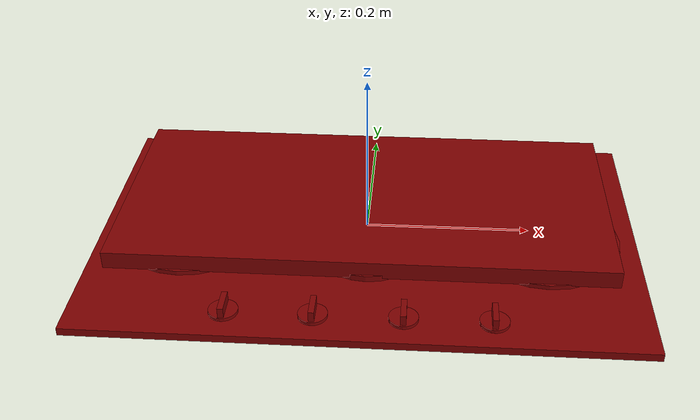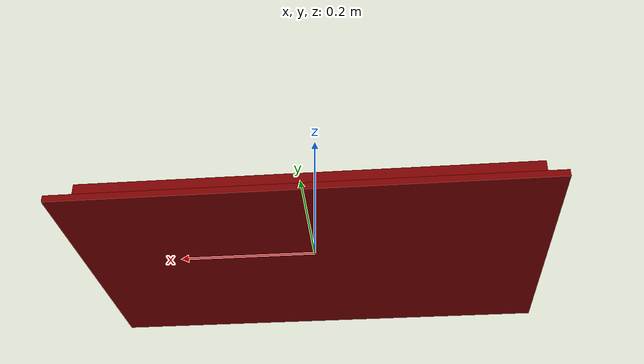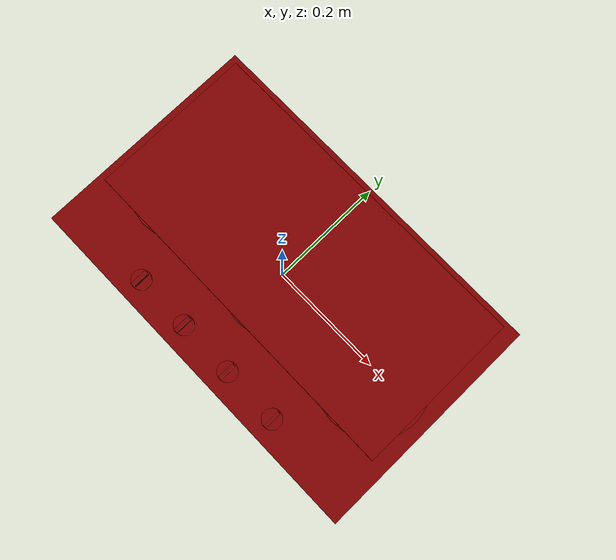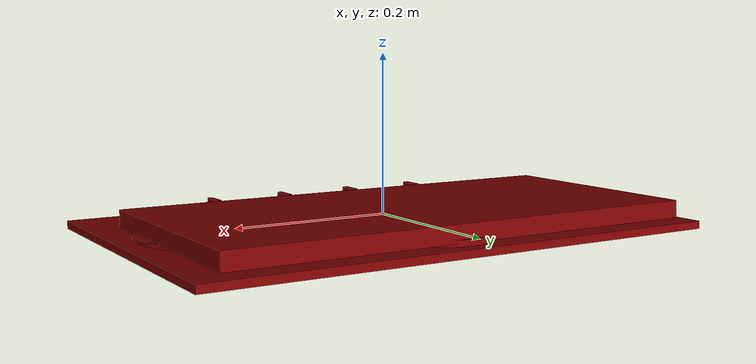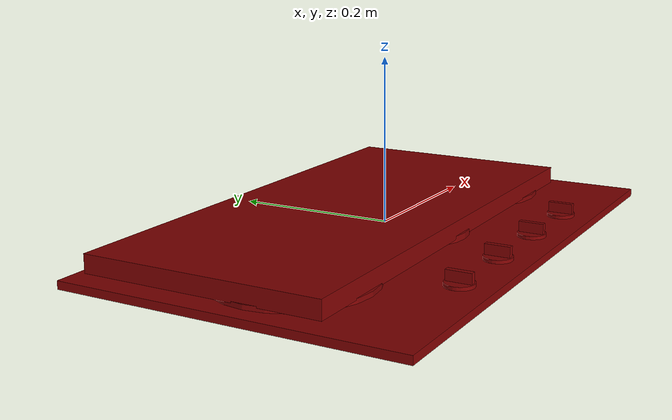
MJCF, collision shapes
<?xml version='1.0' encoding='UTF-8'?>
<mujoco model="model">
  <option timestep="0.002" gravity="0.0 0.0 -9.81"/>
  <compiler angle="radian"/>
  <asset>
    <mesh file="visuals/knob_front_center.obj" name="knob_front_center_vis"/>
    <mesh file="visuals/knob_front_left.obj" name="knob_front_left_vis"/>
    <mesh file="visuals/knob_front_right.obj" name="knob_front_right_vis"/>
    <mesh file="visuals/knob_rear_center.obj" name="knob_rear_center_vis"/>
    <mesh file="visuals/Body001.obj" name="Body001_vis"/>
    <mesh file="visuals/Body002.obj" name="Body002_vis"/>
    <texture file="visuals/T_BC001.png" name="Body001_material" type="2d"/>
    <material name="Body001_material" rgba="1 1 1 1.0" texture="Body001_material" shininess="1" specular="1"/>
    <texture file="visuals/T_BC001.png" name="knob_front_center_material" type="2d"/>
    <material name="knob_front_center_material" rgba="1 1 1 1.0" texture="knob_front_center_material" shininess="1" specular="1"/>
    <texture file="visuals/T_BC001.png" name="knob_front_left_material" type="2d"/>
    <material name="knob_front_left_material" rgba="1 1 1 1.0" texture="knob_front_left_material" shininess="1" specular="1"/>
    <texture file="visuals/T_BC001.png" name="knob_front_right_material" type="2d"/>
    <material name="knob_front_right_material" rgba="1 1 1 1.0" texture="knob_front_right_material" shininess="1" specular="1"/>
    <texture file="visuals/T_BC001.png" name="knob_rear_center_material" type="2d"/>
    <material name="knob_rear_center_material" rgba="1 1 1 1.0" texture="knob_rear_center_material" shininess="1" specular="1"/>
    <texture file="visuals/T_BC001.png" name="Body002_material" type="2d"/>
    <material name="Body002_material" rgba="1 1 1 1.0" texture="Body002_material" shininess="10" specular="10"/>
  </asset>
  <default>
    <default class="visual">
      <geom conaffinity="0" contype="0" group="1" type="mesh"/>
    </default>
    <default class="collision">
      <geom group="0" rgba="0.5 0 0 0.5"/>
    </default>
    <default class="spawn">
      <geom group="0" rgba="1 1 1 0.5" contype="0" conaffinity="0"/>
      <site group="0" rgba="1 1 1 0.5"/>
    </default>
    <default class="region">
      <geom group="1" conaffinity="0" contype="0" rgba="0 1 0 0"/>
    </default>
  </default>
  <worldbody>
    <body>
      <body name="object">
        <geom mesh="Body001_vis" type="mesh" solimp="0.998 0.998 0.001" solref="0.001 1" friction="0.95 0.3 0.1" class="visual" material="Body001_material"/>
        <geom class="collision" type="box" pos="4.380980911378174e-09 0.0 -0.01332028117030859" size="0.3342317044734955 0.20851737260818481 0.0048271240666508675" quat="1.0 0.0 0.0 0.0"/>
        <geom class="collision" type="cylinder" pos="-0.22033053636550903 -0.012668903917074203 -0.006297476124018431" size="0.09286115318536758 0.0034886973444372416" quat="1.0 0.0 0.0 0.0"/>
        <geom class="collision" type="cylinder" pos="-0.22033053636550903 -0.012668903917074203 0.0036210580728948116" size="0.05264684557914734 0.007020096760243177" quat="1.0 0.0 0.0 0.0"/>
        <geom class="collision" type="cylinder" pos="0.22016026079654694 -0.012143885716795921 -0.006297476124018431" size="0.09286115318536758 0.0034886973444372416" quat="1.0 0.0 0.0 0.0"/>
        <geom class="collision" type="cylinder" pos="0.22016026079654694 -0.012143885716795921 0.0036210580728948116" size="0.05264684557914734 0.007020096760243177" quat="1.0 0.0 0.0 0.0"/>
        <geom class="collision" type="cylinder" pos="0.004366257227957249 -0.037866052240133286 -0.0040492527186870575" size="0.06666730344295502 0.0038189413025975227" quat="1.0 0.0 0.0 0.0"/>
        <geom class="collision" type="cylinder" pos="0.004366257227957249 -0.037866052240133286 0.005188675597310066" size="0.037796467542648315 0.005633363965898752" quat="1.0 0.0 0.0 0.0"/>
        <geom class="collision" type="cylinder" pos="0.004366257227957249 0.1288725584745407 -0.0040492527186870575" size="0.06666730344295502 0.0038189413025975227" quat="1.0 0.0 0.0 0.0"/>
        <geom class="collision" type="cylinder" pos="0.004366257227957249 0.1288725584745407 0.005188675597310066" size="0.037796467542648315 0.005633363965898752" quat="1.0 0.0 0.0 0.0"/>
        <body name="knob_front_center">
          <joint axis="0.0 0.0 1.0" pos="-0.051159366965293884 -0.16971886157989502 0.0006744418642483652" limited="true" name="knob_front_center_joint" range="0.0 3.6651914291880923" type="hinge" damping="0.2" armature="0.01" frictionloss="1"/>
          <geom mesh="knob_front_center_vis" type="mesh" solimp="0.998 0.998 0.001" solref="0.001 1" friction="0.95 0.3 0.1" class="visual" material="knob_front_center_material"/>
          <geom class="collision" type="cylinder" pos="-0.05127892270684242 -0.16964967548847198 -0.0053074052557349205" size="0.017160845920443535 0.002062341431155801" quat="1.0 0.0 0.0 0.0" friction="100 0.5 0.01"/>
          <geom class="collision" type="box" pos="-0.05127892270684242 -0.1696496605873108 0.0033415518701076508" size="0.003390667960047722 0.015241791494190693 0.006311689503490925" quat="1.0 0.0 0.0 0.0" name="knob_front_center_main" friction="100 0.5 0.01"/>
        </body>
        <body name="knob_front_left">
          <joint axis="0.0 0.0 1.0" pos="-0.15330645442008972 -0.16971886157989502 0.0011382149532437325" limited="true" name="knob_front_left_joint" range="0.0 3.6651914291880923" type="hinge" damping="0.2" armature="0.01" frictionloss="1"/>
          <geom mesh="knob_front_left_vis" type="mesh" solimp="0.998 0.998 0.001" solref="0.001 1" friction="0.95 0.3 0.1" class="visual" material="knob_front_left_material"/>
          <geom class="collision" type="cylinder" pos="-0.1531001776456833 -0.16964967548847198 -0.004816659726202488" size="0.017160845920443535 0.002062341431155801" quat="1.0 0.0 0.0 0.0" friction="100 0.5 0.01"/>
          <geom class="collision" type="box" pos="-0.1531001776456833 -0.1696496605873108 0.0033415518701076508" size="0.003406719071790576 0.015241791494190693 0.006311689503490925" quat="1.0 0.0 0.0 0.0" name="knob_front_left_main" friction="100 0.5 0.01"/>
        </body>
        <body name="knob_front_right">
          <joint axis="0.0 0.0 1.0" pos="0.15321055054664612 -0.16971886157989502 0.0006744418642483652" limited="true" name="knob_front_right_joint" range="0.0 3.6651914291880923" type="hinge" damping="0.2" armature="0.01" frictionloss="1"/>
          <geom mesh="knob_front_right_vis" type="mesh" solimp="0.998 0.998 0.001" solref="0.001 1" friction="0.95 0.3 0.1" class="visual" material="knob_front_right_material"/>
          <geom class="collision" type="cylinder" pos="0.15314362943172455 -0.16964967548847198 -0.005263169761747122" size="0.017160845920443535 0.002062341431155801" quat="1.0 0.0 0.0 0.0" friction="100 0.5 0.01"/>
          <geom class="collision" type="box" pos="0.15314362943172455 -0.1696496605873108 0.0033415518701076508" size="0.0032751858234405518 0.015241791494190693 0.006311689503490925" quat="1.0 0.0 0.0 0.0" name="knob_front_right_main" friction="100 0.5 0.01"/>
        </body>
        <body name="knob_rear_center">
          <joint axis="0.0 0.0 1.0" pos="0.051047395914793015 -0.16971886157989502 0.0006744418642483652" limited="true" name="knob_rear_center_joint" range="0.0 3.6651914291880923" type="hinge" damping="0.2" armature="0.01" frictionloss="1"/>
          <geom mesh="knob_rear_center_vis" type="mesh" solimp="0.998 0.998 0.001" solref="0.001 1" friction="0.95 0.3 0.1" class="visual" material="knob_rear_center_material"/>
          <geom class="collision" type="cylinder" pos="0.05120574310421944 -0.16964967548847198 -0.005203856620937586" size="0.017160845920443535 0.002062341431155801" quat="1.0 0.0 0.0 0.0" friction="100 0.5 0.01"/>
          <geom class="collision" type="box" pos="0.05120574310421944 -0.1696496605873108 0.0033415518701076508" size="0.003308260580524802 0.015241791494190693 0.006311689503490925" quat="1.0 0.0 0.0 0.0" name="knob_rear_center_main" friction="100 0.5 0.01"/>
        </body>
        <body name="Body002">
          <geom mesh="Body002_vis" type="mesh" solimp="0.998 0.998 0.001" solref="0.001 1" friction="0.95 0.3 0.1" class="visual" material="Body002_material"/>
          <geom class="collision" type="box" pos="-0.004291496239602566 0.04502124339342117 0.006296009290963411" size="0.3069351613521576 0.14653801918029785 0.010914182290434837" quat="1.0 0.0 0.0 0.0"/>
        </body>
        <site type="cylinder" rgba="0.3 0.4 1 0.5" size="0.05069379135966301 0.0025935920421034098" pos="0.22079916298389435 -0.012484343722462654 0.008430317044258118" name="burner_on_front_right"/>
        <site type="cylinder" rgba="0.3 0.4 1 0.5" size="0.05131968483328819 0.0027055712416768074" pos="-0.2201564759016037 -0.012484424747526646 0.008651169016957283" name="burner_on_front_left"/>
        <site type="cylinder" rgba="0.3 0.4 1 0.5" size="0.0366743728518486 0.0026551438495516777" pos="0.004639850463718176 0.12877649068832397 0.00839809887111187" name="burner_on_rear_center"/>
        <site type="cylinder" rgba="0.3 0.4 1 0.5" size="0.037556495517492294 0.0026233636308461428" pos="0.004639845807105303 -0.03729468956589699 0.008280633017420769" name="burner_on_front_center"/>
        <site type="cylinder" rgba="0.5 0 0 0" size="0.037556495517492294 4.999999873689376e-05" pos="0.004639849998056889 -0.03729468956589699 0.01747346855700016" name="burner_front_center_place_site"/>
        <site type="cylinder" rgba="0.5 0 0 0" size="0.05131968483328819 4.999999873689376e-05" pos="-0.2201564759016037 -0.012484424747526646 0.01747346855700016" name="burner_front_left_place_site"/>
        <site type="cylinder" rgba="0.5 0 0 0" size="0.05069379135966301 4.999999873689376e-05" pos="0.22079916298389435 -0.012484343722462654 0.01747346855700016" name="burner_front_right_place_site"/>
        <site type="cylinder" rgba="0.5 0 0 0" size="0.0366743728518486 4.999999873689376e-05" pos="0.004639850463718176 0.12877649068832397 0.01747346855700016" name="burner_rear_center_place_site"/>
        <geom class="region" name="reg_main" type="box" pos="-7.450580596923828e-09 0.0 -0.013320254161953926" size="0.3352316448688507 0.20951734280586243 0.005827149212360382"/>
      </body>
    </body>
  </worldbody>
  <actuator>
    <motor name="knob_front_center_joint_actuator" joint="knob_front_center_joint" gear="10"/>
    <motor name="knob_front_left_joint_actuator" joint="knob_front_left_joint" gear="10"/>
    <motor name="knob_front_right_joint_actuator" joint="knob_front_right_joint" gear="10"/>
    <motor name="knob_rear_center_joint_actuator" joint="knob_rear_center_joint" gear="10"/>
  </actuator>
</mujoco>
